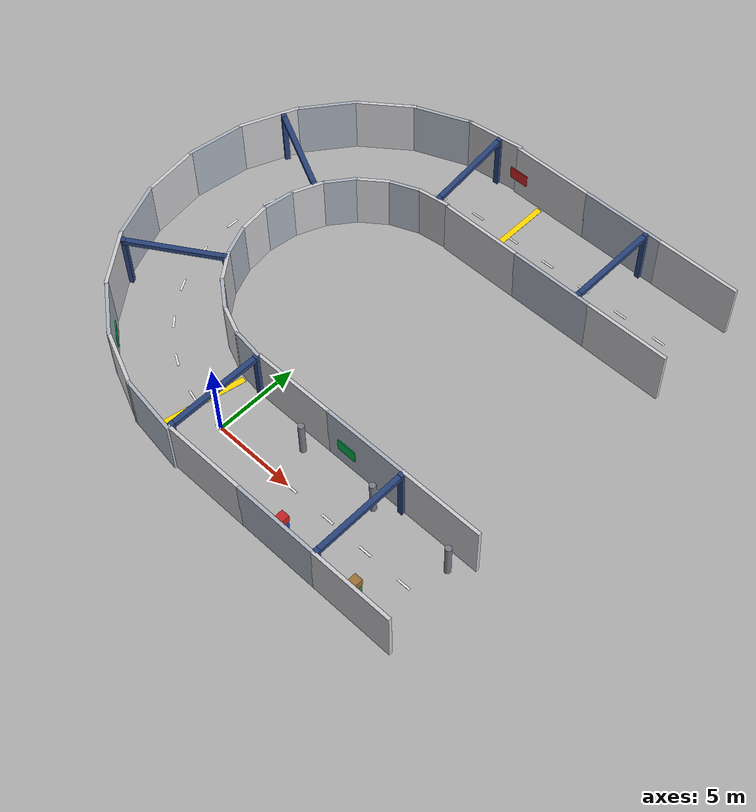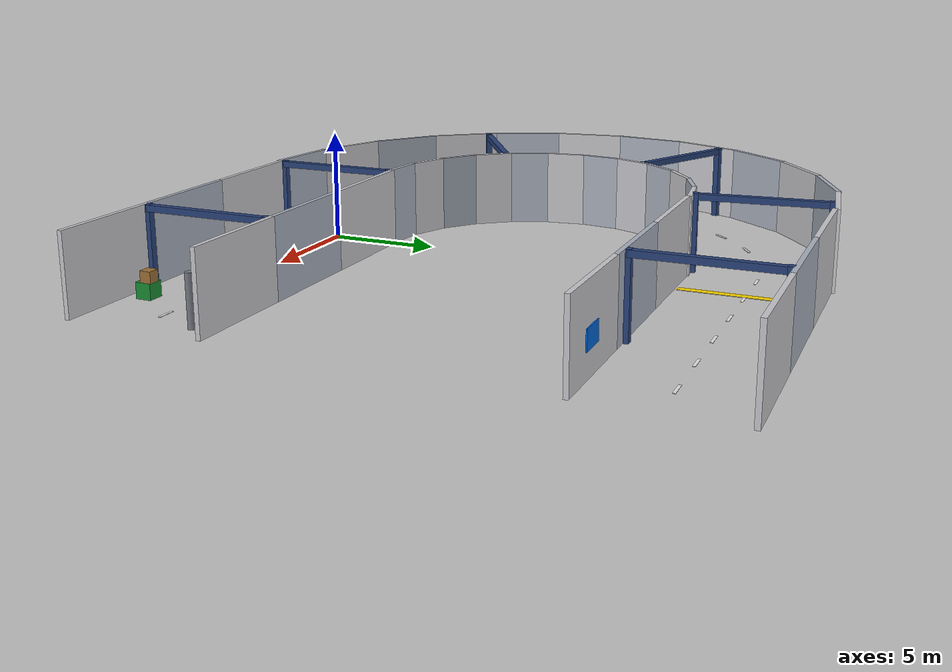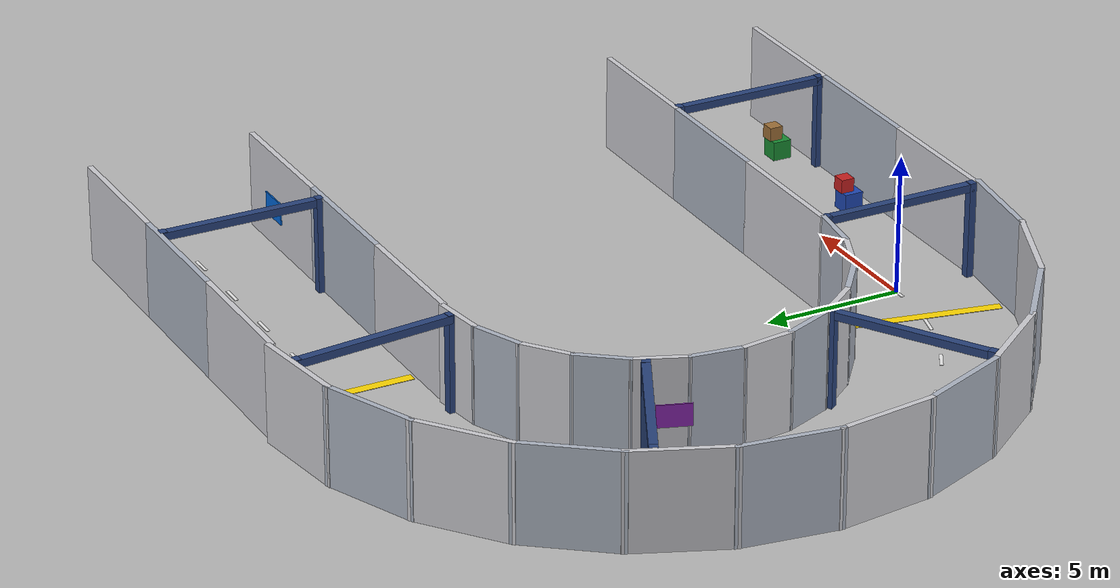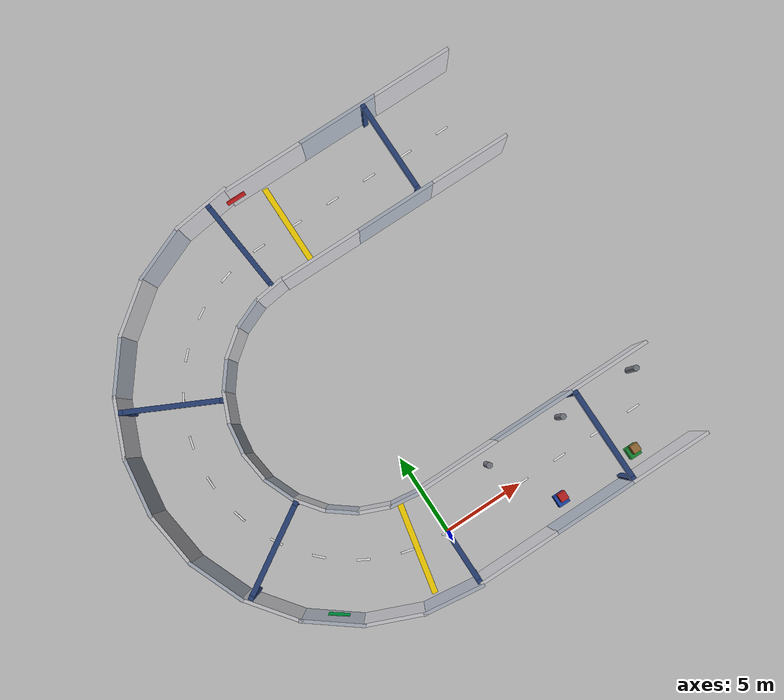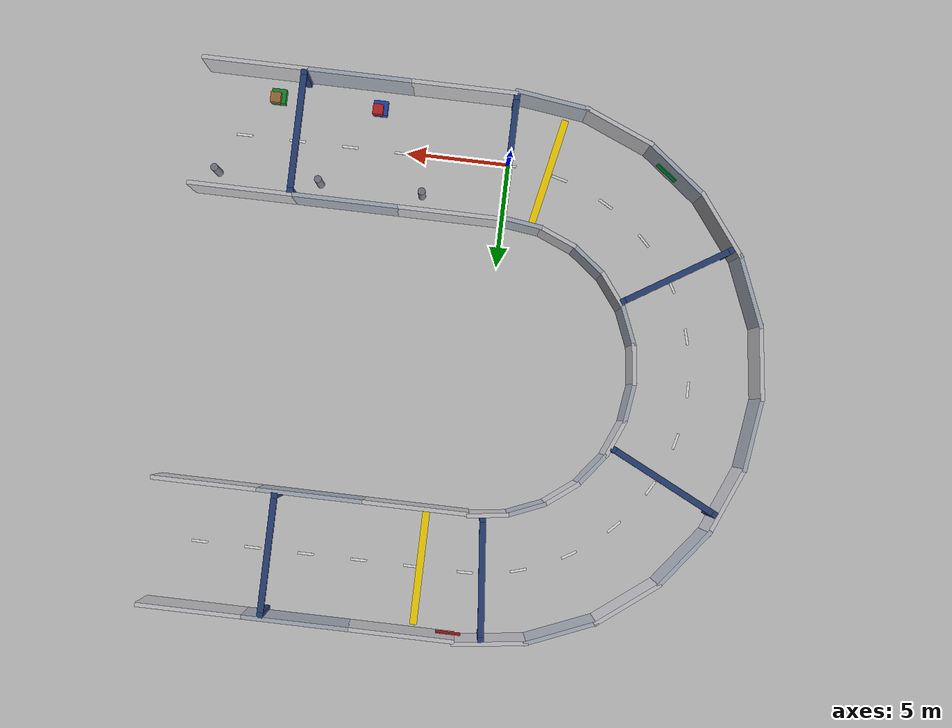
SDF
<sdf version="1.10">
 <world name="tunnel_circuit">
  <model name="tw_Ao_0">
   <static>true</static>
   <pose>2.500 -3.000 1.750 0 0 0.0000</pose>
   <link name="link">
    <collision name="col"><geometry><box><size>5.060 0.200 3.500</size></box></geometry></collision>
    <visual name="vis">
     <geometry><box><size>5.060 0.200 3.500</size></box></geometry>
     <material>
      <ambient>0.50 0.50 0.52 1</ambient>
      <diffuse>0.80 0.80 0.82 1</diffuse>
      <specular>0.1 0.1 0.1 1</specular>
      <pbr>
       <metal><albedo_map>detail.png</albedo_map><roughness>0.92</roughness><metalness>0.0</metalness></metal>
      </pbr>
     </material>
    </visual>
   </link>
  </model>
  <model name="tw_Ao_1">
   <static>true</static>
   <pose>7.500 -3.000 1.750 0 0 0.0000</pose>
   <link name="link">
    <collision name="col"><geometry><box><size>5.060 0.200 3.500</size></box></geometry></collision>
    <visual name="vis">
     <geometry><box><size>5.060 0.200 3.500</size></box></geometry>
     <material>
      <ambient>0.42 0.44 0.48 1</ambient>
      <diffuse>0.68 0.71 0.76 1</diffuse>
      <specular>0.1 0.1 0.1 1</specular>
      <pbr>
       <metal><albedo_map>detail.png</albedo_map><roughness>0.9</roughness><metalness>0.0</metalness></metal>
      </pbr>
     </material>
    </visual>
   </link>
  </model>
  <model name="tw_Ao_2">
   <static>true</static>
   <pose>12.500 -3.000 1.750 0 0 0.0000</pose>
   <link name="link">
    <collision name="col"><geometry><box><size>5.060 0.200 3.500</size></box></geometry></collision>
    <visual name="vis">
     <geometry><box><size>5.060 0.200 3.500</size></box></geometry>
     <material>
      <ambient>0.50 0.50 0.52 1</ambient>
      <diffuse>0.80 0.80 0.82 1</diffuse>
      <specular>0.1 0.1 0.1 1</specular>
      <pbr>
       <metal><albedo_map>detail.png</albedo_map><roughness>0.92</roughness><metalness>0.0</metalness></metal>
      </pbr>
     </material>
    </visual>
   </link>
  </model>
  <model name="tw_Ai_0">
   <static>true</static>
   <pose>2.500 3.000 1.750 0 0 0.0000</pose>
   <link name="link">
    <collision name="col"><geometry><box><size>5.060 0.200 3.500</size></box></geometry></collision>
    <visual name="vis">
     <geometry><box><size>5.060 0.200 3.500</size></box></geometry>
     <material>
      <ambient>0.50 0.50 0.52 1</ambient>
      <diffuse>0.80 0.80 0.82 1</diffuse>
      <specular>0.1 0.1 0.1 1</specular>
      <pbr>
       <metal><albedo_map>detail.png</albedo_map><roughness>0.92</roughness><metalness>0.0</metalness></metal>
      </pbr>
     </material>
    </visual>
   </link>
  </model>
  <model name="tw_Ai_1">
   <static>true</static>
   <pose>7.500 3.000 1.750 0 0 0.0000</pose>
   <link name="link">
    <collision name="col"><geometry><box><size>5.060 0.200 3.500</size></box></geometry></collision>
    <visual name="vis">
     <geometry><box><size>5.060 0.200 3.500</size></box></geometry>
     <material>
      <ambient>0.42 0.44 0.48 1</ambient>
      <diffuse>0.68 0.71 0.76 1</diffuse>
      <specular>0.1 0.1 0.1 1</specular>
      <pbr>
       <metal><albedo_map>detail.png</albedo_map><roughness>0.9</roughness><metalness>0.0</metalness></metal>
      </pbr>
     </material>
    </visual>
   </link>
  </model>
  <model name="tw_Ai_2">
   <static>true</static>
   <pose>12.500 3.000 1.750 0 0 0.0000</pose>
   <link name="link">
    <collision name="col"><geometry><box><size>5.060 0.200 3.500</size></box></geometry></collision>
    <visual name="vis">
     <geometry><box><size>5.060 0.200 3.500</size></box></geometry>
     <material>
      <ambient>0.50 0.50 0.52 1</ambient>
      <diffuse>0.80 0.80 0.82 1</diffuse>
      <specular>0.1 0.1 0.1 1</specular>
      <pbr>
       <metal><albedo_map>detail.png</albedo_map><roughness>0.92</roughness><metalness>0.0</metalness></metal>
      </pbr>
     </material>
    </visual>
   </link>
  </model>
  <model name="tw_Bo_0">
   <static>true</static>
   <pose>2.500 23.000 1.750 0 0 0.0000</pose>
   <link name="link">
    <collision name="col"><geometry><box><size>5.060 0.200 3.500</size></box></geometry></collision>
    <visual name="vis">
     <geometry><box><size>5.060 0.200 3.500</size></box></geometry>
     <material>
      <ambient>0.50 0.50 0.52 1</ambient>
      <diffuse>0.80 0.80 0.82 1</diffuse>
      <specular>0.1 0.1 0.1 1</specular>
      <pbr>
       <metal><albedo_map>detail.png</albedo_map><roughness>0.92</roughness><metalness>0.0</metalness></metal>
      </pbr>
     </material>
    </visual>
   </link>
  </model>
  <model name="tw_Bo_1">
   <static>true</static>
   <pose>7.500 23.000 1.750 0 0 0.0000</pose>
   <link name="link">
    <collision name="col"><geometry><box><size>5.060 0.200 3.500</size></box></geometry></collision>
    <visual name="vis">
     <geometry><box><size>5.060 0.200 3.500</size></box></geometry>
     <material>
      <ambient>0.42 0.44 0.48 1</ambient>
      <diffuse>0.68 0.71 0.76 1</diffuse>
      <specular>0.1 0.1 0.1 1</specular>
      <pbr>
       <metal><albedo_map>detail.png</albedo_map><roughness>0.9</roughness><metalness>0.0</metalness></metal>
      </pbr>
     </material>
    </visual>
   </link>
  </model>
  <model name="tw_Bo_2">
   <static>true</static>
   <pose>12.500 23.000 1.750 0 0 0.0000</pose>
   <link name="link">
    <collision name="col"><geometry><box><size>5.060 0.200 3.500</size></box></geometry></collision>
    <visual name="vis">
     <geometry><box><size>5.060 0.200 3.500</size></box></geometry>
     <material>
      <ambient>0.50 0.50 0.52 1</ambient>
      <diffuse>0.80 0.80 0.82 1</diffuse>
      <specular>0.1 0.1 0.1 1</specular>
      <pbr>
       <metal><albedo_map>detail.png</albedo_map><roughness>0.92</roughness><metalness>0.0</metalness></metal>
      </pbr>
     </material>
    </visual>
   </link>
  </model>
  <model name="tw_Bi_0">
   <static>true</static>
   <pose>2.500 17.000 1.750 0 0 0.0000</pose>
   <link name="link">
    <collision name="col"><geometry><box><size>5.060 0.200 3.500</size></box></geometry></collision>
    <visual name="vis">
     <geometry><box><size>5.060 0.200 3.500</size></box></geometry>
     <material>
      <ambient>0.50 0.50 0.52 1</ambient>
      <diffuse>0.80 0.80 0.82 1</diffuse>
      <specular>0.1 0.1 0.1 1</specular>
      <pbr>
       <metal><albedo_map>detail.png</albedo_map><roughness>0.92</roughness><metalness>0.0</metalness></metal>
      </pbr>
     </material>
    </visual>
   </link>
  </model>
  <model name="tw_Bi_1">
   <static>true</static>
   <pose>7.500 17.000 1.750 0 0 0.0000</pose>
   <link name="link">
    <collision name="col"><geometry><box><size>5.060 0.200 3.500</size></box></geometry></collision>
    <visual name="vis">
     <geometry><box><size>5.060 0.200 3.500</size></box></geometry>
     <material>
      <ambient>0.42 0.44 0.48 1</ambient>
      <diffuse>0.68 0.71 0.76 1</diffuse>
      <specular>0.1 0.1 0.1 1</specular>
      <pbr>
       <metal><albedo_map>detail.png</albedo_map><roughness>0.9</roughness><metalness>0.0</metalness></metal>
      </pbr>
     </material>
    </visual>
   </link>
  </model>
  <model name="tw_Bi_2">
   <static>true</static>
   <pose>12.500 17.000 1.750 0 0 0.0000</pose>
   <link name="link">
    <collision name="col"><geometry><box><size>5.060 0.200 3.500</size></box></geometry></collision>
    <visual name="vis">
     <geometry><box><size>5.060 0.200 3.500</size></box></geometry>
     <material>
      <ambient>0.50 0.50 0.52 1</ambient>
      <diffuse>0.80 0.80 0.82 1</diffuse>
      <specular>0.1 0.1 0.1 1</specular>
      <pbr>
       <metal><albedo_map>detail.png</albedo_map><roughness>0.92</roughness><metalness>0.0</metalness></metal>
      </pbr>
     </material>
    </visual>
   </link>
  </model>
  <model name="tw_Lo_0">
   <static>true</static>
   <pose>-1.697 22.889 1.750 0 0 3.2725</pose>
   <link name="link">
    <collision name="col"><geometry><box><size>3.665 0.200 3.500</size></box></geometry></collision>
    <visual name="vis">
     <geometry><box><size>3.665 0.200 3.500</size></box></geometry>
     <material>
      <ambient>0.50 0.50 0.52 1</ambient>
      <diffuse>0.80 0.80 0.82 1</diffuse>
      <specular>0.1 0.1 0.1 1</specular>
      <pbr>
       <metal><albedo_map>detail.png</albedo_map><roughness>0.92</roughness><metalness>0.0</metalness></metal>
      </pbr>
     </material>
    </visual>
   </link>
  </model>
  <model name="tw_Lo_1">
   <static>true</static>
   <pose>-4.975 22.010 1.750 0 0 3.5343</pose>
   <link name="link">
    <collision name="col"><geometry><box><size>3.665 0.200 3.500</size></box></geometry></collision>
    <visual name="vis">
     <geometry><box><size>3.665 0.200 3.500</size></box></geometry>
     <material>
      <ambient>0.42 0.44 0.48 1</ambient>
      <diffuse>0.68 0.71 0.76 1</diffuse>
      <specular>0.1 0.1 0.1 1</specular>
      <pbr>
       <metal><albedo_map>detail.png</albedo_map><roughness>0.9</roughness><metalness>0.0</metalness></metal>
      </pbr>
     </material>
    </visual>
   </link>
  </model>
  <model name="tw_Lo_2">
   <static>true</static>
   <pose>-7.914 20.314 1.750 0 0 3.7961</pose>
   <link name="link">
    <collision name="col"><geometry><box><size>3.665 0.200 3.500</size></box></geometry></collision>
    <visual name="vis">
     <geometry><box><size>3.665 0.200 3.500</size></box></geometry>
     <material>
      <ambient>0.50 0.50 0.52 1</ambient>
      <diffuse>0.80 0.80 0.82 1</diffuse>
      <specular>0.1 0.1 0.1 1</specular>
      <pbr>
       <metal><albedo_map>detail.png</albedo_map><roughness>0.92</roughness><metalness>0.0</metalness></metal>
      </pbr>
     </material>
    </visual>
   </link>
  </model>
  <model name="tw_Lo_3">
   <static>true</static>
   <pose>-10.314 17.914 1.750 0 0 4.0579</pose>
   <link name="link">
    <collision name="col"><geometry><box><size>3.665 0.200 3.500</size></box></geometry></collision>
    <visual name="vis">
     <geometry><box><size>3.665 0.200 3.500</size></box></geometry>
     <material>
      <ambient>0.42 0.44 0.48 1</ambient>
      <diffuse>0.68 0.71 0.76 1</diffuse>
      <specular>0.1 0.1 0.1 1</specular>
      <pbr>
       <metal><albedo_map>detail.png</albedo_map><roughness>0.9</roughness><metalness>0.0</metalness></metal>
      </pbr>
     </material>
    </visual>
   </link>
  </model>
  <model name="tw_Lo_4">
   <static>true</static>
   <pose>-12.010 14.975 1.750 0 0 4.3197</pose>
   <link name="link">
    <collision name="col"><geometry><box><size>3.665 0.200 3.500</size></box></geometry></collision>
    <visual name="vis">
     <geometry><box><size>3.665 0.200 3.500</size></box></geometry>
     <material>
      <ambient>0.50 0.50 0.52 1</ambient>
      <diffuse>0.80 0.80 0.82 1</diffuse>
      <specular>0.1 0.1 0.1 1</specular>
      <pbr>
       <metal><albedo_map>detail.png</albedo_map><roughness>0.92</roughness><metalness>0.0</metalness></metal>
      </pbr>
     </material>
    </visual>
   </link>
  </model>
  <model name="tw_Lo_5">
   <static>true</static>
   <pose>-12.889 11.697 1.750 0 0 4.5815</pose>
   <link name="link">
    <collision name="col"><geometry><box><size>3.665 0.200 3.500</size></box></geometry></collision>
    <visual name="vis">
     <geometry><box><size>3.665 0.200 3.500</size></box></geometry>
     <material>
      <ambient>0.42 0.44 0.48 1</ambient>
      <diffuse>0.68 0.71 0.76 1</diffuse>
      <specular>0.1 0.1 0.1 1</specular>
      <pbr>
       <metal><albedo_map>detail.png</albedo_map><roughness>0.9</roughness><metalness>0.0</metalness></metal>
      </pbr>
     </material>
    </visual>
   </link>
  </model>
  <model name="tw_Lo_6">
   <static>true</static>
   <pose>-12.889 8.303 1.750 0 0 4.8433</pose>
   <link name="link">
    <collision name="col"><geometry><box><size>3.665 0.200 3.500</size></box></geometry></collision>
    <visual name="vis">
     <geometry><box><size>3.665 0.200 3.500</size></box></geometry>
     <material>
      <ambient>0.50 0.50 0.52 1</ambient>
      <diffuse>0.80 0.80 0.82 1</diffuse>
      <specular>0.1 0.1 0.1 1</specular>
      <pbr>
       <metal><albedo_map>detail.png</albedo_map><roughness>0.92</roughness><metalness>0.0</metalness></metal>
      </pbr>
     </material>
    </visual>
   </link>
  </model>
  <model name="tw_Lo_7">
   <static>true</static>
   <pose>-12.010 5.025 1.750 0 0 5.1051</pose>
   <link name="link">
    <collision name="col"><geometry><box><size>3.665 0.200 3.500</size></box></geometry></collision>
    <visual name="vis">
     <geometry><box><size>3.665 0.200 3.500</size></box></geometry>
     <material>
      <ambient>0.42 0.44 0.48 1</ambient>
      <diffuse>0.68 0.71 0.76 1</diffuse>
      <specular>0.1 0.1 0.1 1</specular>
      <pbr>
       <metal><albedo_map>detail.png</albedo_map><roughness>0.9</roughness><metalness>0.0</metalness></metal>
      </pbr>
     </material>
    </visual>
   </link>
  </model>
  <model name="tw_Lo_8">
   <static>true</static>
   <pose>-10.314 2.086 1.750 0 0 5.3669</pose>
   <link name="link">
    <collision name="col"><geometry><box><size>3.665 0.200 3.500</size></box></geometry></collision>
    <visual name="vis">
     <geometry><box><size>3.665 0.200 3.500</size></box></geometry>
     <material>
      <ambient>0.50 0.50 0.52 1</ambient>
      <diffuse>0.80 0.80 0.82 1</diffuse>
      <specular>0.1 0.1 0.1 1</specular>
      <pbr>
       <metal><albedo_map>detail.png</albedo_map><roughness>0.92</roughness><metalness>0.0</metalness></metal>
      </pbr>
     </material>
    </visual>
   </link>
  </model>
  <model name="tw_Lo_9">
   <static>true</static>
   <pose>-7.914 -0.314 1.750 0 0 5.6287</pose>
   <link name="link">
    <collision name="col"><geometry><box><size>3.665 0.200 3.500</size></box></geometry></collision>
    <visual name="vis">
     <geometry><box><size>3.665 0.200 3.500</size></box></geometry>
     <material>
      <ambient>0.42 0.44 0.48 1</ambient>
      <diffuse>0.68 0.71 0.76 1</diffuse>
      <specular>0.1 0.1 0.1 1</specular>
      <pbr>
       <metal><albedo_map>detail.png</albedo_map><roughness>0.9</roughness><metalness>0.0</metalness></metal>
      </pbr>
     </material>
    </visual>
   </link>
  </model>
  <model name="tw_Lo_10">
   <static>true</static>
   <pose>-4.975 -2.010 1.750 0 0 5.8905</pose>
   <link name="link">
    <collision name="col"><geometry><box><size>3.665 0.200 3.500</size></box></geometry></collision>
    <visual name="vis">
     <geometry><box><size>3.665 0.200 3.500</size></box></geometry>
     <material>
      <ambient>0.50 0.50 0.52 1</ambient>
      <diffuse>0.80 0.80 0.82 1</diffuse>
      <specular>0.1 0.1 0.1 1</specular>
      <pbr>
       <metal><albedo_map>detail.png</albedo_map><roughness>0.92</roughness><metalness>0.0</metalness></metal>
      </pbr>
     </material>
    </visual>
   </link>
  </model>
  <model name="tw_Lo_11">
   <static>true</static>
   <pose>-1.697 -2.889 1.750 0 0 6.1523</pose>
   <link name="link">
    <collision name="col"><geometry><box><size>3.665 0.200 3.500</size></box></geometry></collision>
    <visual name="vis">
     <geometry><box><size>3.665 0.200 3.500</size></box></geometry>
     <material>
      <ambient>0.42 0.44 0.48 1</ambient>
      <diffuse>0.68 0.71 0.76 1</diffuse>
      <specular>0.1 0.1 0.1 1</specular>
      <pbr>
       <metal><albedo_map>detail.png</albedo_map><roughness>0.9</roughness><metalness>0.0</metalness></metal>
      </pbr>
     </material>
    </visual>
   </link>
  </model>
  <model name="tw_Li_0">
   <static>true</static>
   <pose>-0.914 16.940 1.750 0 0 3.2725</pose>
   <link name="link">
    <collision name="col"><geometry><box><size>1.974 0.200 3.500</size></box></geometry></collision>
    <visual name="vis">
     <geometry><box><size>1.974 0.200 3.500</size></box></geometry>
     <material>
      <ambient>0.50 0.50 0.52 1</ambient>
      <diffuse>0.80 0.80 0.82 1</diffuse>
      <specular>0.1 0.1 0.1 1</specular>
      <pbr>
       <metal><albedo_map>detail.png</albedo_map><roughness>0.92</roughness><metalness>0.0</metalness></metal>
      </pbr>
     </material>
    </visual>
   </link>
  </model>
  <model name="tw_Li_1">
   <static>true</static>
   <pose>-2.679 16.467 1.750 0 0 3.5343</pose>
   <link name="link">
    <collision name="col"><geometry><box><size>1.974 0.200 3.500</size></box></geometry></collision>
    <visual name="vis">
     <geometry><box><size>1.974 0.200 3.500</size></box></geometry>
     <material>
      <ambient>0.42 0.44 0.48 1</ambient>
      <diffuse>0.68 0.71 0.76 1</diffuse>
      <specular>0.1 0.1 0.1 1</specular>
      <pbr>
       <metal><albedo_map>detail.png</albedo_map><roughness>0.9</roughness><metalness>0.0</metalness></metal>
      </pbr>
     </material>
    </visual>
   </link>
  </model>
  <model name="tw_Li_2">
   <static>true</static>
   <pose>-4.261 15.553 1.750 0 0 3.7961</pose>
   <link name="link">
    <collision name="col"><geometry><box><size>1.974 0.200 3.500</size></box></geometry></collision>
    <visual name="vis">
     <geometry><box><size>1.974 0.200 3.500</size></box></geometry>
     <material>
      <ambient>0.50 0.50 0.52 1</ambient>
      <diffuse>0.80 0.80 0.82 1</diffuse>
      <specular>0.1 0.1 0.1 1</specular>
      <pbr>
       <metal><albedo_map>detail.png</albedo_map><roughness>0.92</roughness><metalness>0.0</metalness></metal>
      </pbr>
     </material>
    </visual>
   </link>
  </model>
  <model name="tw_Li_3">
   <static>true</static>
   <pose>-5.553 14.261 1.750 0 0 4.0579</pose>
   <link name="link">
    <collision name="col"><geometry><box><size>1.974 0.200 3.500</size></box></geometry></collision>
    <visual name="vis">
     <geometry><box><size>1.974 0.200 3.500</size></box></geometry>
     <material>
      <ambient>0.42 0.44 0.48 1</ambient>
      <diffuse>0.68 0.71 0.76 1</diffuse>
      <specular>0.1 0.1 0.1 1</specular>
      <pbr>
       <metal><albedo_map>detail.png</albedo_map><roughness>0.9</roughness><metalness>0.0</metalness></metal>
      </pbr>
     </material>
    </visual>
   </link>
  </model>
  <model name="tw_Li_4">
   <static>true</static>
   <pose>-6.467 12.679 1.750 0 0 4.3197</pose>
   <link name="link">
    <collision name="col"><geometry><box><size>1.974 0.200 3.500</size></box></geometry></collision>
    <visual name="vis">
     <geometry><box><size>1.974 0.200 3.500</size></box></geometry>
     <material>
      <ambient>0.50 0.50 0.52 1</ambient>
      <diffuse>0.80 0.80 0.82 1</diffuse>
      <specular>0.1 0.1 0.1 1</specular>
      <pbr>
       <metal><albedo_map>detail.png</albedo_map><roughness>0.92</roughness><metalness>0.0</metalness></metal>
      </pbr>
     </material>
    </visual>
   </link>
  </model>
  <model name="tw_Li_5">
   <static>true</static>
   <pose>-6.940 10.914 1.750 0 0 4.5815</pose>
   <link name="link">
    <collision name="col"><geometry><box><size>1.974 0.200 3.500</size></box></geometry></collision>
    <visual name="vis">
     <geometry><box><size>1.974 0.200 3.500</size></box></geometry>
     <material>
      <ambient>0.42 0.44 0.48 1</ambient>
      <diffuse>0.68 0.71 0.76 1</diffuse>
      <specular>0.1 0.1 0.1 1</specular>
      <pbr>
       <metal><albedo_map>detail.png</albedo_map><roughness>0.9</roughness><metalness>0.0</metalness></metal>
      </pbr>
     </material>
    </visual>
   </link>
  </model>
  <model name="tw_Li_6">
   <static>true</static>
   <pose>-6.940 9.086 1.750 0 0 4.8433</pose>
   <link name="link">
    <collision name="col"><geometry><box><size>1.974 0.200 3.500</size></box></geometry></collision>
    <visual name="vis">
     <geometry><box><size>1.974 0.200 3.500</size></box></geometry>
     <material>
      <ambient>0.50 0.50 0.52 1</ambient>
      <diffuse>0.80 0.80 0.82 1</diffuse>
      <specular>0.1 0.1 0.1 1</specular>
      <pbr>
       <metal><albedo_map>detail.png</albedo_map><roughness>0.92</roughness><metalness>0.0</metalness></metal>
      </pbr>
     </material>
    </visual>
   </link>
  </model>
  <model name="tw_Li_7">
   <static>true</static>
   <pose>-6.467 7.321 1.750 0 0 5.1051</pose>
   <link name="link">
    <collision name="col"><geometry><box><size>1.974 0.200 3.500</size></box></geometry></collision>
    <visual name="vis">
     <geometry><box><size>1.974 0.200 3.500</size></box></geometry>
     <material>
      <ambient>0.42 0.44 0.48 1</ambient>
      <diffuse>0.68 0.71 0.76 1</diffuse>
      <specular>0.1 0.1 0.1 1</specular>
      <pbr>
       <metal><albedo_map>detail.png</albedo_map><roughness>0.9</roughness><metalness>0.0</metalness></metal>
      </pbr>
     </material>
    </visual>
   </link>
  </model>
  <model name="tw_Li_8">
   <static>true</static>
   <pose>-5.553 5.739 1.750 0 0 5.3669</pose>
   <link name="link">
    <collision name="col"><geometry><box><size>1.974 0.200 3.500</size></box></geometry></collision>
    <visual name="vis">
     <geometry><box><size>1.974 0.200 3.500</size></box></geometry>
     <material>
      <ambient>0.50 0.50 0.52 1</ambient>
      <diffuse>0.80 0.80 0.82 1</diffuse>
      <specular>0.1 0.1 0.1 1</specular>
      <pbr>
       <metal><albedo_map>detail.png</albedo_map><roughness>0.92</roughness><metalness>0.0</metalness></metal>
      </pbr>
     </material>
    </visual>
   </link>
  </model>
  <model name="tw_Li_9">
   <static>true</static>
   <pose>-4.261 4.447 1.750 0 0 5.6287</pose>
   <link name="link">
    <collision name="col"><geometry><box><size>1.974 0.200 3.500</size></box></geometry></collision>
    <visual name="vis">
     <geometry><box><size>1.974 0.200 3.500</size></box></geometry>
     <material>
      <ambient>0.42 0.44 0.48 1</ambient>
      <diffuse>0.68 0.71 0.76 1</diffuse>
      <specular>0.1 0.1 0.1 1</specular>
      <pbr>
       <metal><albedo_map>detail.png</albedo_map><roughness>0.9</roughness><metalness>0.0</metalness></metal>
      </pbr>
     </material>
    </visual>
   </link>
  </model>
  <model name="tw_Li_10">
   <static>true</static>
   <pose>-2.679 3.533 1.750 0 0 5.8905</pose>
   <link name="link">
    <collision name="col"><geometry><box><size>1.974 0.200 3.500</size></box></geometry></collision>
    <visual name="vis">
     <geometry><box><size>1.974 0.200 3.500</size></box></geometry>
     <material>
      <ambient>0.50 0.50 0.52 1</ambient>
      <diffuse>0.80 0.80 0.82 1</diffuse>
      <specular>0.1 0.1 0.1 1</specular>
      <pbr>
       <metal><albedo_map>detail.png</albedo_map><roughness>0.92</roughness><metalness>0.0</metalness></metal>
      </pbr>
     </material>
    </visual>
   </link>
  </model>
  <model name="tw_Li_11">
   <static>true</static>
   <pose>-0.914 3.060 1.750 0 0 6.1523</pose>
   <link name="link">
    <collision name="col"><geometry><box><size>1.974 0.200 3.500</size></box></geometry></collision>
    <visual name="vis">
     <geometry><box><size>1.974 0.200 3.500</size></box></geometry>
     <material>
      <ambient>0.42 0.44 0.48 1</ambient>
      <diffuse>0.68 0.71 0.76 1</diffuse>
      <specular>0.1 0.1 0.1 1</specular>
      <pbr>
       <metal><albedo_map>detail.png</albedo_map><roughness>0.9</roughness><metalness>0.0</metalness></metal>
      </pbr>
     </material>
    </visual>
   </link>
  </model>
  <model name="rib0_p">
   <static>true</static>
   <pose>0.000 2.820 1.750 0 0 0.0000</pose>
   <link name="link">
    <collision name="col"><geometry><box><size>0.300 0.250 3.500</size></box></geometry></collision>
    <visual name="vis">
     <geometry><box><size>0.300 0.250 3.500</size></box></geometry>
     <material>
      <ambient>0.10 0.16 0.30 1</ambient>
      <diffuse>0.16 0.26 0.48 1</diffuse>
      <specular>0.3 0.3 0.35 1</specular>
     </material>
    </visual>
   </link>
  </model>
  <model name="rib0_m">
   <static>true</static>
   <pose>0.000 -2.820 1.750 0 0 0.0000</pose>
   <link name="link">
    <collision name="col"><geometry><box><size>0.300 0.250 3.500</size></box></geometry></collision>
    <visual name="vis">
     <geometry><box><size>0.300 0.250 3.500</size></box></geometry>
     <material>
      <ambient>0.10 0.16 0.30 1</ambient>
      <diffuse>0.16 0.26 0.48 1</diffuse>
      <specular>0.3 0.3 0.35 1</specular>
     </material>
    </visual>
   </link>
  </model>
  <model name="rib0_c">
   <static>true</static>
   <pose>0.000 0.000 3.340 0 0 0.0000</pose>
   <link name="link">
    <collision name="col"><geometry><box><size>0.300 5.700 0.280</size></box></geometry></collision>
    <visual name="vis">
     <geometry><box><size>0.300 5.700 0.280</size></box></geometry>
     <material>
      <ambient>0.10 0.16 0.30 1</ambient>
      <diffuse>0.16 0.26 0.48 1</diffuse>
      <specular>0.3 0.3 0.35 1</specular>
     </material>
    </visual>
   </link>
  </model>
  <model name="rib1_p">
   <static>true</static>
   <pose>10.142 2.820 1.750 0 0 0.0000</pose>
   <link name="link">
    <collision name="col"><geometry><box><size>0.300 0.250 3.500</size></box></geometry></collision>
    <visual name="vis">
     <geometry><box><size>0.300 0.250 3.500</size></box></geometry>
     <material>
      <ambient>0.10 0.16 0.30 1</ambient>
      <diffuse>0.16 0.26 0.48 1</diffuse>
      <specular>0.3 0.3 0.35 1</specular>
     </material>
    </visual>
   </link>
  </model>
  <model name="rib1_m">
   <static>true</static>
   <pose>10.142 -2.820 1.750 0 0 0.0000</pose>
   <link name="link">
    <collision name="col"><geometry><box><size>0.300 0.250 3.500</size></box></geometry></collision>
    <visual name="vis">
     <geometry><box><size>0.300 0.250 3.500</size></box></geometry>
     <material>
      <ambient>0.10 0.16 0.30 1</ambient>
      <diffuse>0.16 0.26 0.48 1</diffuse>
      <specular>0.3 0.3 0.35 1</specular>
     </material>
    </visual>
   </link>
  </model>
  <model name="rib1_c">
   <static>true</static>
   <pose>10.142 0.000 3.340 0 0 0.0000</pose>
   <link name="link">
    <collision name="col"><geometry><box><size>0.300 5.700 0.280</size></box></geometry></collision>
    <visual name="vis">
     <geometry><box><size>0.300 5.700 0.280</size></box></geometry>
     <material>
      <ambient>0.10 0.16 0.30 1</ambient>
      <diffuse>0.16 0.26 0.48 1</diffuse>
      <specular>0.3 0.3 0.35 1</specular>
     </material>
    </visual>
   </link>
  </model>
  <model name="rib16_p">
   <static>true</static>
   <pose>9.150 17.180 1.750 0 0 3.1416</pose>
   <link name="link">
    <collision name="col"><geometry><box><size>0.300 0.250 3.500</size></box></geometry></collision>
    <visual name="vis">
     <geometry><box><size>0.300 0.250 3.500</size></box></geometry>
     <material>
      <ambient>0.10 0.16 0.30 1</ambient>
      <diffuse>0.16 0.26 0.48 1</diffuse>
      <specular>0.3 0.3 0.35 1</specular>
     </material>
    </visual>
   </link>
  </model>
  <model name="rib16_m">
   <static>true</static>
   <pose>9.150 22.820 1.750 0 0 3.1416</pose>
   <link name="link">
    <collision name="col"><geometry><box><size>0.300 0.250 3.500</size></box></geometry></collision>
    <visual name="vis">
     <geometry><box><size>0.300 0.250 3.500</size></box></geometry>
     <material>
      <ambient>0.10 0.16 0.30 1</ambient>
      <diffuse>0.16 0.26 0.48 1</diffuse>
      <specular>0.3 0.3 0.35 1</specular>
     </material>
    </visual>
   </link>
  </model>
  <model name="rib16_c">
   <static>true</static>
   <pose>9.150 20.000 3.340 0 0 3.1416</pose>
   <link name="link">
    <collision name="col"><geometry><box><size>0.300 5.700 0.280</size></box></geometry></collision>
    <visual name="vis">
     <geometry><box><size>0.300 5.700 0.280</size></box></geometry>
     <material>
      <ambient>0.10 0.16 0.30 1</ambient>
      <diffuse>0.16 0.26 0.48 1</diffuse>
      <specular>0.3 0.3 0.35 1</specular>
     </material>
    </visual>
   </link>
  </model>
  <model name="rib17_p">
   <static>true</static>
   <pose>-0.710 17.145 1.750 0 0 3.2407</pose>
   <link name="link">
    <collision name="col"><geometry><box><size>0.300 0.250 3.500</size></box></geometry></collision>
    <visual name="vis">
     <geometry><box><size>0.300 0.250 3.500</size></box></geometry>
     <material>
      <ambient>0.10 0.16 0.30 1</ambient>
      <diffuse>0.16 0.26 0.48 1</diffuse>
      <specular>0.3 0.3 0.35 1</specular>
     </material>
    </visual>
   </link>
  </model>
  <model name="rib17_m">
   <static>true</static>
   <pose>-1.269 22.757 1.750 0 0 3.2407</pose>
   <link name="link">
    <collision name="col"><geometry><box><size>0.300 0.250 3.500</size></box></geometry></collision>
    <visual name="vis">
     <geometry><box><size>0.300 0.250 3.500</size></box></geometry>
     <material>
      <ambient>0.10 0.16 0.30 1</ambient>
      <diffuse>0.16 0.26 0.48 1</diffuse>
      <specular>0.3 0.3 0.35 1</specular>
     </material>
    </visual>
   </link>
  </model>
  <model name="rib17_c">
   <static>true</static>
   <pose>-0.990 19.951 3.340 0 0 3.2407</pose>
   <link name="link">
    <collision name="col"><geometry><box><size>0.300 5.700 0.280</size></box></geometry></collision>
    <visual name="vis">
     <geometry><box><size>0.300 5.700 0.280</size></box></geometry>
     <material>
      <ambient>0.10 0.16 0.30 1</ambient>
      <diffuse>0.16 0.26 0.48 1</diffuse>
      <specular>0.3 0.3 0.35 1</specular>
     </material>
    </visual>
   </link>
  </model>
  <model name="rib18_p">
   <static>true</static>
   <pose>-6.442 13.172 1.750 0 0 4.2549</pose>
   <link name="link">
    <collision name="col"><geometry><box><size>0.300 0.250 3.500</size></box></geometry></collision>
    <visual name="vis">
     <geometry><box><size>0.300 0.250 3.500</size></box></geometry>
     <material>
      <ambient>0.10 0.16 0.30 1</ambient>
      <diffuse>0.16 0.26 0.48 1</diffuse>
      <specular>0.3 0.3 0.35 1</specular>
     </material>
    </visual>
   </link>
  </model>
  <model name="rib18_m">
   <static>true</static>
   <pose>-11.501 15.663 1.750 0 0 4.2549</pose>
   <link name="link">
    <collision name="col"><geometry><box><size>0.300 0.250 3.500</size></box></geometry></collision>
    <visual name="vis">
     <geometry><box><size>0.300 0.250 3.500</size></box></geometry>
     <material>
      <ambient>0.10 0.16 0.30 1</ambient>
      <diffuse>0.16 0.26 0.48 1</diffuse>
      <specular>0.3 0.3 0.35 1</specular>
     </material>
    </visual>
   </link>
  </model>
  <model name="rib18_c">
   <static>true</static>
   <pose>-8.971 14.417 3.340 0 0 4.2549</pose>
   <link name="link">
    <collision name="col"><geometry><box><size>0.300 5.700 0.280</size></box></geometry></collision>
    <visual name="vis">
     <geometry><box><size>0.300 5.700 0.280</size></box></geometry>
     <material>
      <ambient>0.10 0.16 0.30 1</ambient>
      <diffuse>0.16 0.26 0.48 1</diffuse>
      <specular>0.3 0.3 0.35 1</specular>
     </material>
    </visual>
   </link>
  </model>
  <model name="rib19_p">
   <static>true</static>
   <pose>-6.096 6.207 1.750 0 0 5.2690</pose>
   <link name="link">
    <collision name="col"><geometry><box><size>0.300 0.250 3.500</size></box></geometry></collision>
    <visual name="vis">
     <geometry><box><size>0.300 0.250 3.500</size></box></geometry>
     <material>
      <ambient>0.10 0.16 0.30 1</ambient>
      <diffuse>0.16 0.26 0.48 1</diffuse>
      <specular>0.3 0.3 0.35 1</specular>
     </material>
    </visual>
   </link>
  </model>
  <model name="rib19_m">
   <static>true</static>
   <pose>-10.885 3.227 1.750 0 0 5.2690</pose>
   <link name="link">
    <collision name="col"><geometry><box><size>0.300 0.250 3.500</size></box></geometry></collision>
    <visual name="vis">
     <geometry><box><size>0.300 0.250 3.500</size></box></geometry>
     <material>
      <ambient>0.10 0.16 0.30 1</ambient>
      <diffuse>0.16 0.26 0.48 1</diffuse>
      <specular>0.3 0.3 0.35 1</specular>
     </material>
    </visual>
   </link>
  </model>
  <model name="rib19_c">
   <static>true</static>
   <pose>-8.490 4.717 3.340 0 0 5.2690</pose>
   <link name="link">
    <collision name="col"><geometry><box><size>0.300 5.700 0.280</size></box></geometry></collision>
    <visual name="vis">
     <geometry><box><size>0.300 5.700 0.280</size></box></geometry>
     <material>
      <ambient>0.10 0.16 0.30 1</ambient>
      <diffuse>0.16 0.26 0.48 1</diffuse>
      <specular>0.3 0.3 0.35 1</specular>
     </material>
    </visual>
   </link>
  </model>
  <model name="sign0">
   <static>true</static>
   <pose>6.338 2.840 1.500 0 0 0.0000</pose>
   <link name="link">
    <visual name="vis">
     <geometry><box><size>1.200 0.050 0.800</size></box></geometry>
     <material>
      <ambient>0.0 0.5 0.2 1</ambient>
      <diffuse>0.0 0.7 0.3 1</diffuse>
      <specular>0.1 0.1 0.1 1</specular>
     </material>
    </visual>
   </link>
  </model>
  <model name="sign12">
   <static>true</static>
   <pose>12.954 17.160 1.500 0 0 3.1416</pose>
   <link name="link">
    <visual name="vis">
     <geometry><box><size>1.200 0.050 0.800</size></box></geometry>
     <material>
      <ambient>0.0 0.3 0.6 1</ambient>
      <diffuse>0.0 0.4 0.85 1</diffuse>
      <specular>0.1 0.1 0.1 1</specular>
     </material>
    </visual>
   </link>
  </model>
  <model name="sign13">
   <static>true</static>
   <pose>0.277 22.840 1.500 0 0 3.1416</pose>
   <link name="link">
    <visual name="vis">
     <geometry><box><size>1.200 0.050 0.800</size></box></geometry>
     <material>
      <ambient>0.55 0.08 0.08 1</ambient>
      <diffuse>0.82 0.12 0.12 1</diffuse>
      <specular>0.1 0.1 0.1 1</specular>
     </material>
    </visual>
   </link>
  </model>
  <model name="sign14">
   <static>true</static>
   <pose>-6.772 12.325 1.500 0 0 4.3816</pose>
   <link name="link">
    <visual name="vis">
     <geometry><box><size>1.200 0.050 0.800</size></box></geometry>
     <material>
      <ambient>0.35 0.10 0.45 1</ambient>
      <diffuse>0.55 0.16 0.70 1</diffuse>
      <specular>0.1 0.1 0.1 1</specular>
     </material>
    </visual>
   </link>
  </model>
  <model name="sign15">
   <static>true</static>
   <pose>-7.605 -0.346 1.500 0 0 5.6493</pose>
   <link name="link">
    <visual name="vis">
     <geometry><box><size>1.200 0.050 0.800</size></box></geometry>
     <material>
      <ambient>0.0 0.5 0.2 1</ambient>
      <diffuse>0.0 0.7 0.3 1</diffuse>
      <specular>0.1 0.1 0.1 1</specular>
     </material>
    </visual>
   </link>
  </model>
  <model name="dash0">
   <static>true</static>
   <pose>0.000 0.000 0.012 0 0 0.0000</pose>
   <link name="link">
    <visual name="vis">
     <geometry><box><size>0.800 0.120 0.020</size></box></geometry>
     <material>
      <ambient>0.7 0.7 0.7 1</ambient>
      <diffuse>0.92 0.92 0.92 1</diffuse>
      <specular>0.1 0.1 0.1 1</specular>
     </material>
    </visual>
   </link>
  </model>
  <model name="dash1">
   <static>true</static>
   <pose>2.600 0.000 0.012 0 0 0.0000</pose>
   <link name="link">
    <visual name="vis">
     <geometry><box><size>0.800 0.120 0.020</size></box></geometry>
     <material>
      <ambient>0.7 0.7 0.7 1</ambient>
      <diffuse>0.92 0.92 0.92 1</diffuse>
      <specular>0.1 0.1 0.1 1</specular>
     </material>
    </visual>
   </link>
  </model>
  <model name="dash2">
   <static>true</static>
   <pose>5.201 0.000 0.012 0 0 0.0000</pose>
   <link name="link">
    <visual name="vis">
     <geometry><box><size>0.800 0.120 0.020</size></box></geometry>
     <material>
      <ambient>0.7 0.7 0.7 1</ambient>
      <diffuse>0.92 0.92 0.92 1</diffuse>
      <specular>0.1 0.1 0.1 1</specular>
     </material>
    </visual>
   </link>
  </model>
  <model name="dash3">
   <static>true</static>
   <pose>7.801 0.000 0.012 0 0 0.0000</pose>
   <link name="link">
    <visual name="vis">
     <geometry><box><size>0.800 0.120 0.020</size></box></geometry>
     <material>
      <ambient>0.7 0.7 0.7 1</ambient>
      <diffuse>0.92 0.92 0.92 1</diffuse>
      <specular>0.1 0.1 0.1 1</specular>
     </material>
    </visual>
   </link>
  </model>
  <model name="dash4">
   <static>true</static>
   <pose>10.402 0.000 0.012 0 0 0.0000</pose>
   <link name="link">
    <visual name="vis">
     <geometry><box><size>0.800 0.120 0.020</size></box></geometry>
     <material>
      <ambient>0.7 0.7 0.7 1</ambient>
      <diffuse>0.92 0.92 0.92 1</diffuse>
      <specular>0.1 0.1 0.1 1</specular>
     </material>
    </visual>
   </link>
  </model>
  <model name="dash5">
   <static>true</static>
   <pose>13.002 0.000 0.012 0 0 0.0000</pose>
   <link name="link">
    <visual name="vis">
     <geometry><box><size>0.800 0.120 0.020</size></box></geometry>
     <material>
      <ambient>0.7 0.7 0.7 1</ambient>
      <diffuse>0.92 0.92 0.92 1</diffuse>
      <specular>0.1 0.1 0.1 1</specular>
     </material>
    </visual>
   </link>
  </model>
  <model name="dash61">
   <static>true</static>
   <pose>12.791 20.000 0.012 0 0 3.1416</pose>
   <link name="link">
    <visual name="vis">
     <geometry><box><size>0.800 0.120 0.020</size></box></geometry>
     <material>
      <ambient>0.7 0.7 0.7 1</ambient>
      <diffuse>0.92 0.92 0.92 1</diffuse>
      <specular>0.1 0.1 0.1 1</specular>
     </material>
    </visual>
   </link>
  </model>
  <model name="dash62">
   <static>true</static>
   <pose>10.191 20.000 0.012 0 0 3.1416</pose>
   <link name="link">
    <visual name="vis">
     <geometry><box><size>0.800 0.120 0.020</size></box></geometry>
     <material>
      <ambient>0.7 0.7 0.7 1</ambient>
      <diffuse>0.92 0.92 0.92 1</diffuse>
      <specular>0.1 0.1 0.1 1</specular>
     </material>
    </visual>
   </link>
  </model>
  <model name="dash63">
   <static>true</static>
   <pose>7.590 20.000 0.012 0 0 3.1416</pose>
   <link name="link">
    <visual name="vis">
     <geometry><box><size>0.800 0.120 0.020</size></box></geometry>
     <material>
      <ambient>0.7 0.7 0.7 1</ambient>
      <diffuse>0.92 0.92 0.92 1</diffuse>
      <specular>0.1 0.1 0.1 1</specular>
     </material>
    </visual>
   </link>
  </model>
  <model name="dash64">
   <static>true</static>
   <pose>4.990 20.000 0.012 0 0 3.1416</pose>
   <link name="link">
    <visual name="vis">
     <geometry><box><size>0.800 0.120 0.020</size></box></geometry>
     <material>
      <ambient>0.7 0.7 0.7 1</ambient>
      <diffuse>0.92 0.92 0.92 1</diffuse>
      <specular>0.1 0.1 0.1 1</specular>
     </material>
    </visual>
   </link>
  </model>
  <model name="dash65">
   <static>true</static>
   <pose>2.389 20.000 0.012 0 0 3.1416</pose>
   <link name="link">
    <visual name="vis">
     <geometry><box><size>0.800 0.120 0.020</size></box></geometry>
     <material>
      <ambient>0.7 0.7 0.7 1</ambient>
      <diffuse>0.92 0.92 0.92 1</diffuse>
      <specular>0.1 0.1 0.1 1</specular>
     </material>
    </visual>
   </link>
  </model>
  <model name="dash66">
   <static>true</static>
   <pose>-0.211 19.998 0.012 0 0 3.1627</pose>
   <link name="link">
    <visual name="vis">
     <geometry><box><size>0.800 0.120 0.020</size></box></geometry>
     <material>
      <ambient>0.7 0.7 0.7 1</ambient>
      <diffuse>0.92 0.92 0.92 1</diffuse>
      <specular>0.1 0.1 0.1 1</specular>
     </material>
    </visual>
   </link>
  </model>
  <model name="dash67">
   <static>true</static>
   <pose>-2.775 19.607 0.012 0 0 3.4227</pose>
   <link name="link">
    <visual name="vis">
     <geometry><box><size>0.800 0.120 0.020</size></box></geometry>
     <material>
      <ambient>0.7 0.7 0.7 1</ambient>
      <diffuse>0.92 0.92 0.92 1</diffuse>
      <specular>0.1 0.1 0.1 1</specular>
     </material>
    </visual>
   </link>
  </model>
  <model name="dash68">
   <static>true</static>
   <pose>-5.152 18.571 0.012 0 0 3.6828</pose>
   <link name="link">
    <visual name="vis">
     <geometry><box><size>0.800 0.120 0.020</size></box></geometry>
     <material>
      <ambient>0.7 0.7 0.7 1</ambient>
      <diffuse>0.92 0.92 0.92 1</diffuse>
      <specular>0.1 0.1 0.1 1</specular>
     </material>
    </visual>
   </link>
  </model>
  <model name="dash69">
   <static>true</static>
   <pose>-7.182 16.958 0.012 0 0 3.9428</pose>
   <link name="link">
    <visual name="vis">
     <geometry><box><size>0.800 0.120 0.020</size></box></geometry>
     <material>
      <ambient>0.7 0.7 0.7 1</ambient>
      <diffuse>0.92 0.92 0.92 1</diffuse>
      <specular>0.1 0.1 0.1 1</specular>
     </material>
    </visual>
   </link>
  </model>
  <model name="dash70">
   <static>true</static>
   <pose>-8.730 14.878 0.012 0 0 4.2029</pose>
   <link name="link">
    <visual name="vis">
     <geometry><box><size>0.800 0.120 0.020</size></box></geometry>
     <material>
      <ambient>0.7 0.7 0.7 1</ambient>
      <diffuse>0.92 0.92 0.92 1</diffuse>
      <specular>0.1 0.1 0.1 1</specular>
     </material>
    </visual>
   </link>
  </model>
  <model name="dash71">
   <static>true</static>
   <pose>-9.690 12.469 0.012 0 0 4.4629</pose>
   <link name="link">
    <visual name="vis">
     <geometry><box><size>0.800 0.120 0.020</size></box></geometry>
     <material>
      <ambient>0.7 0.7 0.7 1</ambient>
      <diffuse>0.92 0.92 0.92 1</diffuse>
      <specular>0.1 0.1 0.1 1</specular>
     </material>
    </visual>
   </link>
  </model>
  <model name="dash72">
   <static>true</static>
   <pose>-9.999 9.894 0.012 0 0 4.7229</pose>
   <link name="link">
    <visual name="vis">
     <geometry><box><size>0.800 0.120 0.020</size></box></geometry>
     <material>
      <ambient>0.7 0.7 0.7 1</ambient>
      <diffuse>0.92 0.92 0.92 1</diffuse>
      <specular>0.1 0.1 0.1 1</specular>
     </material>
    </visual>
   </link>
  </model>
  <model name="dash73">
   <static>true</static>
   <pose>-9.636 7.327 0.012 0 0 4.9830</pose>
   <link name="link">
    <visual name="vis">
     <geometry><box><size>0.800 0.120 0.020</size></box></geometry>
     <material>
      <ambient>0.7 0.7 0.7 1</ambient>
      <diffuse>0.92 0.92 0.92 1</diffuse>
      <specular>0.1 0.1 0.1 1</specular>
     </material>
    </visual>
   </link>
  </model>
  <model name="dash74">
   <static>true</static>
   <pose>-8.625 4.939 0.012 0 0 5.2430</pose>
   <link name="link">
    <visual name="vis">
     <geometry><box><size>0.800 0.120 0.020</size></box></geometry>
     <material>
      <ambient>0.7 0.7 0.7 1</ambient>
      <diffuse>0.92 0.92 0.92 1</diffuse>
      <specular>0.1 0.1 0.1 1</specular>
     </material>
    </visual>
   </link>
  </model>
  <model name="dash75">
   <static>true</static>
   <pose>-7.034 2.892 0.012 0 0 5.5031</pose>
   <link name="link">
    <visual name="vis">
     <geometry><box><size>0.800 0.120 0.020</size></box></geometry>
     <material>
      <ambient>0.7 0.7 0.7 1</ambient>
      <diffuse>0.92 0.92 0.92 1</diffuse>
      <specular>0.1 0.1 0.1 1</specular>
     </material>
    </visual>
   </link>
  </model>
  <model name="dash76">
   <static>true</static>
   <pose>-4.970 1.322 0.012 0 0 5.7631</pose>
   <link name="link">
    <visual name="vis">
     <geometry><box><size>0.800 0.120 0.020</size></box></geometry>
     <material>
      <ambient>0.7 0.7 0.7 1</ambient>
      <diffuse>0.92 0.92 0.92 1</diffuse>
      <specular>0.1 0.1 0.1 1</specular>
     </material>
    </visual>
   </link>
  </model>
  <model name="dash77">
   <static>true</static>
   <pose>-2.571 0.336 0.012 0 0 6.0231</pose>
   <link name="link">
    <visual name="vis">
     <geometry><box><size>0.800 0.120 0.020</size></box></geometry>
     <material>
      <ambient>0.7 0.7 0.7 1</ambient>
      <diffuse>0.92 0.92 0.92 1</diffuse>
      <specular>0.1 0.1 0.1 1</specular>
     </material>
    </visual>
   </link>
  </model>
  <model name="initpillar0">
   <static>true</static>
   <pose>4.000 2.000 1.100 0 0 0</pose>
   <link name="link">
    <collision name="col">
     <geometry><cylinder><radius>0.18</radius><length>2.2</length></cylinder></geometry>
    </collision>
    <visual name="vis">
     <geometry><cylinder><radius>0.18</radius><length>2.200</length></cylinder></geometry>
     <material>
      <ambient>0.33 0.34 0.37 1</ambient>
      <diffuse>0.48 0.49 0.53 1</diffuse>
      <specular>0.3 0.3 0.3 1</specular>
     </material>
    </visual>
   </link>
  </model>
  <model name="initcrate1a">
   <static>true</static>
   <pose>6.500 -2.000 0.350 0 0 0.0000</pose>
   <link name="link">
    <collision name="col"><geometry><box><size>0.700 0.700 0.700</size></box></geometry></collision>
    <visual name="vis">
     <geometry><box><size>0.700 0.700 0.700</size></box></geometry>
     <material>
      <ambient>0.07 0.16 0.42 1</ambient>
      <diffuse>0.12 0.28 0.70 1</diffuse>
      <specular>0.3 0.3 0.4 1</specular>
     </material>
    </visual>
   </link>
  </model>
  <model name="initcrate1b">
   <static>true</static>
   <pose>6.600 -1.850 0.950 0 0 0.0000</pose>
   <link name="link">
    <collision name="col"><geometry><box><size>0.500 0.500 0.500</size></box></geometry></collision>
    <visual name="vis">
     <geometry><box><size>0.500 0.500 0.500</size></box></geometry>
     <material>
      <ambient>0.45 0.07 0.07 1</ambient>
      <diffuse>0.78 0.13 0.13 1</diffuse>
      <specular>0.1 0.1 0.1 1</specular>
     </material>
    </visual>
   </link>
  </model>
  <model name="initpillar2">
   <static>true</static>
   <pose>9.000 2.000 1.100 0 0 0</pose>
   <link name="link">
    <collision name="col">
     <geometry><cylinder><radius>0.18</radius><length>2.2</length></cylinder></geometry>
    </collision>
    <visual name="vis">
     <geometry><cylinder><radius>0.18</radius><length>2.200</length></cylinder></geometry>
     <material>
      <ambient>0.33 0.34 0.37 1</ambient>
      <diffuse>0.48 0.49 0.53 1</diffuse>
      <specular>0.3 0.3 0.3 1</specular>
     </material>
    </visual>
   </link>
  </model>
  <model name="initcrate3a">
   <static>true</static>
   <pose>11.500 -2.000 0.350 0 0 0.0000</pose>
   <link name="link">
    <collision name="col"><geometry><box><size>0.700 0.700 0.700</size></box></geometry></collision>
    <visual name="vis">
     <geometry><box><size>0.700 0.700 0.700</size></box></geometry>
     <material>
      <ambient>0.06 0.35 0.12 1</ambient>
      <diffuse>0.10 0.55 0.20 1</diffuse>
      <specular>0.1 0.1 0.1 1</specular>
     </material>
    </visual>
   </link>
  </model>
  <model name="initcrate3b">
   <static>true</static>
   <pose>11.600 -1.850 0.950 0 0 0.0000</pose>
   <link name="link">
    <collision name="col"><geometry><box><size>0.500 0.500 0.500</size></box></geometry></collision>
    <visual name="vis">
     <geometry><box><size>0.500 0.500 0.500</size></box></geometry>
     <material>
      <ambient>0.40 0.28 0.14 1</ambient>
      <diffuse>0.62 0.44 0.22 1</diffuse>
      <specular>0.1 0.1 0.1 1</specular>
     </material>
    </visual>
   </link>
  </model>
  <model name="initpillar4">
   <static>true</static>
   <pose>14.000 2.000 1.100 0 0 0</pose>
   <link name="link">
    <collision name="col">
     <geometry><cylinder><radius>0.18</radius><length>2.2</length></cylinder></geometry>
    </collision>
    <visual name="vis">
     <geometry><cylinder><radius>0.18</radius><length>2.200</length></cylinder></geometry>
     <material>
      <ambient>0.33 0.34 0.37 1</ambient>
      <diffuse>0.48 0.49 0.53 1</diffuse>
      <specular>0.3 0.3 0.3 1</specular>
     </material>
    </visual>
   </link>
  </model>
  <model name="hazard2">
   <static>true</static>
   <pose>2.000 20.000 0.013 0 0 3.1416</pose>
   <link name="link">
    <visual name="vis">
     <geometry><box><size>0.350 5.600 0.020</size></box></geometry>
     <material>
      <ambient>0.85 0.75 0.0 1</ambient>
      <diffuse>1.0 0.85 0.0 1</diffuse>
      <specular>0.1 0.1 0.1 1</specular>
     </material>
    </visual>
   </link>
  </model>
  <model name="hazard3">
   <static>true</static>
   <pose>-1.987 0.199 0.013 0 0 6.0832</pose>
   <link name="link">
    <visual name="vis">
     <geometry><box><size>0.350 5.600 0.020</size></box></geometry>
     <material>
      <ambient>0.85 0.75 0.0 1</ambient>
      <diffuse>1.0 0.85 0.0 1</diffuse>
      <specular>0.1 0.1 0.1 1</specular>
     </material>
    </visual>
   </link>
  </model>
 </world>
</sdf>
